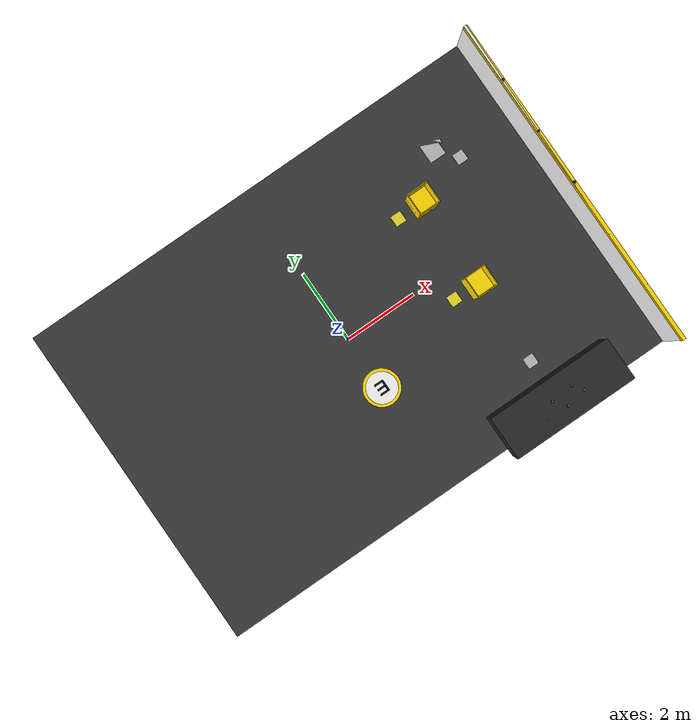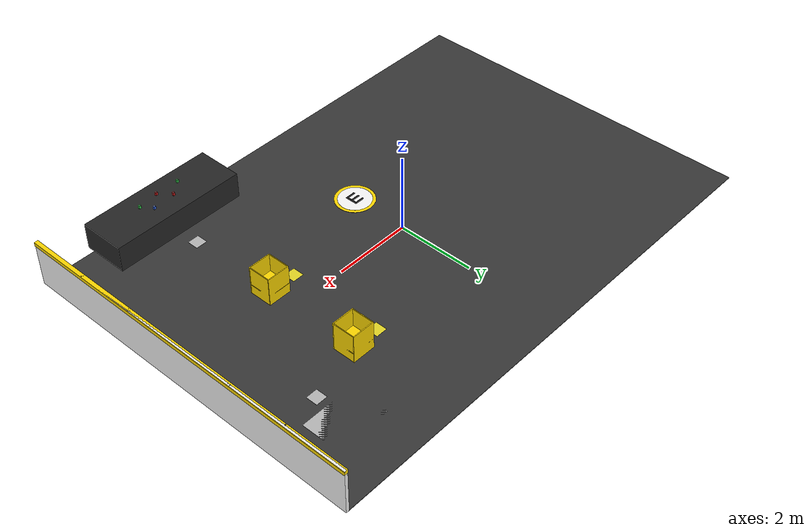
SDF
<sdf version="1.7">
 <world name="warehouse_exact">
  <model name="ground_plane">
   <static>1</static>
   <link name="link">
    <collision name="collision">
     <geometry><box><size>13.2 9.2 0.02</size></box></geometry>
     <surface><friction><ode><mu>1</mu><mu2>1</mu2></ode></friction></surface>
    </collision>
    <visual name="visual">
     <cast_shadows>0</cast_shadows>
     <geometry><box><size>13.2 9.2 0.02</size></box></geometry>
     <material>
      <ambient>0.22 0.22 0.22 1</ambient>
      <diffuse>0.22 0.22 0.22 1</diffuse>
      <specular>0 0 0 1</specular>
     </material>
    </visual>
   </link>
  </model>
  <model name="barrier_east">
   <pose>6.6 0 0.6 0 -0 0</pose>
   <static>1</static>
   <link name="link">
    <collision name="collision"><geometry><box><size>0.08 9.2 1.2</size></box></geometry></collision>
    <visual name="panel">
     <geometry><box><size>0.08 9.2 1.2</size></box></geometry>
     <material><ambient>0.95 0.95 0.95 1</ambient><diffuse>0.95 0.95 0.95 1</diffuse></material>
    </visual>
    <visual name="yellow_top">
     <pose>0 0 0.55 0 -0 0</pose>
     <geometry><box><size>0.1 9.2 0.1</size></box></geometry>
     <material><ambient>1 0.85 0 1</ambient><diffuse>1 0.85 0 1</diffuse></material>
    </visual>
   </link>
   <link name="support_1">
    <pose>0 -3 0 0 -0 0</pose>
    <visual name="visual">
     <geometry><cylinder><radius>0.04</radius><length>1.2</length></cylinder></geometry>
     <material><ambient>0.1 0.1 0.1 1</ambient><diffuse>0.1 0.1 0.1 1</diffuse></material>
    </visual>
   </link>
   <link name="support_2">
    <pose>0 -1.5 0 0 -0 0</pose>
    <visual name="visual">
     <geometry><cylinder><radius>0.04</radius><length>1.2</length></cylinder></geometry>
     <material><ambient>0.1 0.1 0.1 1</ambient><diffuse>0.1 0.1 0.1 1</diffuse></material>
    </visual>
   </link>
   <link name="support_3">
    <visual name="visual">
     <geometry><cylinder><radius>0.04</radius><length>1.2</length></cylinder></geometry>
     <material><ambient>0.1 0.1 0.1 1</ambient><diffuse>0.1 0.1 0.1 1</diffuse></material>
    </visual>
   </link>
   <link name="support_4">
    <pose>0 1.5 0 0 -0 0</pose>
    <visual name="visual">
     <geometry><cylinder><radius>0.04</radius><length>1.2</length></cylinder></geometry>
     <material><ambient>0.1 0.1 0.1 1</ambient><diffuse>0.1 0.1 0.1 1</diffuse></material>
    </visual>
   </link>
   <link name="support_5">
    <pose>0 3 0 0 -0 0</pose>
    <visual name="visual">
     <geometry><cylinder><radius>0.04</radius><length>1.2</length></cylinder></geometry>
     <material><ambient>0.1 0.1 0.1 1</ambient><diffuse>0.1 0.1 0.1 1</diffuse></material>
    </visual>
   </link>
  </model>
  <model name="position_circle_3">
   <pose>0 -1.5 0.022 0 -0 0</pose>
   <static>1</static>
   <link name="link">
    <visual name="yellow_outer">
     <geometry><cylinder><radius>0.5</radius><length>0.004</length></cylinder></geometry>
     <material><ambient>1 0.85 0 1</ambient><diffuse>1 0.85 0 1</diffuse></material>
    </visual>
    <visual name="white_center">
     <pose>0 0 0.001 0 -0 0</pose>
     <geometry><cylinder><radius>0.42</radius><length>0.004</length></cylinder></geometry>
     <material><ambient>0.98 0.98 0.98 1</ambient><diffuse>0.98 0.98 0.98 1</diffuse></material>
    </visual>
    <visual name="seg_A">
     <pose>0 0.14 0.02 0 -0 0</pose>
     <geometry><box><size>0.26 0.05 0.004</size></box></geometry>
     <material><ambient>0.1 0.1 0.1 1</ambient><diffuse>0.1 0.1 0.1 1</diffuse></material>
    </visual>
    <visual name="seg_B">
     <pose>0.11 0.05 0.02 0 -0 0</pose>
     <geometry><box><size>0.05 0.18 0.004</size></box></geometry>
     <material><ambient>0.1 0.1 0.1 1</ambient><diffuse>0.1 0.1 0.1 1</diffuse></material>
    </visual>
    <visual name="seg_G">
     <pose>0 0 0.02 0 -0 0</pose>
     <geometry><box><size>0.26 0.05 0.004</size></box></geometry>
     <material><ambient>0.1 0.1 0.1 1</ambient><diffuse>0.1 0.1 0.1 1</diffuse></material>
    </visual>
    <visual name="seg_C">
     <pose>0.11 -0.07 0.02 0 -0 0</pose>
     <geometry><box><size>0.05 0.18 0.004</size></box></geometry>
     <material><ambient>0.1 0.1 0.1 1</ambient><diffuse>0.1 0.1 0.1 1</diffuse></material>
    </visual>
    <visual name="seg_D">
     <pose>0 -0.14 0.02 0 -0 0</pose>
     <geometry><box><size>0.26 0.05 0.004</size></box></geometry>
     <material><ambient>0.1 0.1 0.1 1</ambient><diffuse>0.1 0.1 0.1 1</diffuse></material>
    </visual>
   </link>
  </model>
  <model name="yellow_crate_right_top">
   <pose>3.5 1.8 0.375 0 -0 0</pose>
   <static>1</static>
   <link name="bottom">
    <pose>0 0 -0.115 0 -0 0</pose>
    <collision name="collision"><geometry><box><size>0.6 0.6 0.02</size></box></geometry></collision>
    <visual name="visual">
     <geometry><box><size>0.6 0.6 0.02</size></box></geometry>
     <material><ambient>1 0.85 0 1</ambient><diffuse>1 0.85 0 1</diffuse></material>
    </visual>
   </link>
   <link name="wall_front">
    <pose>0 0.29 0 0 -0 0</pose>
    <collision name="collision"><geometry><box><size>0.6 0.02 0.75</size></box></geometry></collision>
    <visual name="visual">
     <geometry><box><size>0.6 0.02 0.75</size></box></geometry>
     <material><ambient>1 0.85 0 1</ambient><diffuse>1 0.85 0 1</diffuse></material>
    </visual>
   </link>
   <link name="wall_back">
    <pose>0 -0.29 0 0 -0 0</pose>
    <collision name="collision"><geometry><box><size>0.6 0.02 0.75</size></box></geometry></collision>
    <visual name="visual">
     <geometry><box><size>0.6 0.02 0.75</size></box></geometry>
     <material><ambient>1 0.85 0 1</ambient><diffuse>1 0.85 0 1</diffuse></material>
    </visual>
   </link>
   <link name="wall_left">
    <pose>-0.29 0 0 0 -0 0</pose>
    <collision name="collision"><geometry><box><size>0.02 0.56 0.75</size></box></geometry></collision>
    <visual name="visual">
     <geometry><box><size>0.02 0.56 0.75</size></box></geometry>
     <material><ambient>1 0.85 0 1</ambient><diffuse>1 0.85 0 1</diffuse></material>
    </visual>
   </link>
   <link name="wall_right">
    <pose>0.29 0 0 0 -0 0</pose>
    <collision name="collision"><geometry><box><size>0.02 0.56 0.75</size></box></geometry></collision>
    <visual name="visual">
     <geometry><box><size>0.02 0.56 0.75</size></box></geometry>
     <material><ambient>1 0.85 0 1</ambient><diffuse>1 0.85 0 1</diffuse></material>
    </visual>
   </link>
  </model>
  <model name="yellow_crate_right_middle">
   <pose>3.5 -0.7 0.375 0 -0 0</pose>
   <static>1</static>
   <link name="bottom">
    <pose>0 0 -0.115 0 -0 0</pose>
    <collision name="collision"><geometry><box><size>0.6 0.6 0.02</size></box></geometry></collision>
    <visual name="visual">
     <geometry><box><size>0.6 0.6 0.02</size></box></geometry>
     <material><ambient>1 0.85 0 1</ambient><diffuse>1 0.85 0 1</diffuse></material>
    </visual>
   </link>
   <link name="wall_front">
    <pose>0 0.29 0 0 -0 0</pose>
    <collision name="collision"><geometry><box><size>0.6 0.02 0.75</size></box></geometry></collision>
    <visual name="visual">
     <geometry><box><size>0.6 0.02 0.75</size></box></geometry>
     <material><ambient>1 0.85 0 1</ambient><diffuse>1 0.85 0 1</diffuse></material>
    </visual>
   </link>
   <link name="wall_back">
    <pose>0 -0.29 0 0 -0 0</pose>
    <collision name="collision"><geometry><box><size>0.6 0.02 0.75</size></box></geometry></collision>
    <visual name="visual">
     <geometry><box><size>0.6 0.02 0.75</size></box></geometry>
     <material><ambient>1 0.85 0 1</ambient><diffuse>1 0.85 0 1</diffuse></material>
    </visual>
   </link>
   <link name="wall_left">
    <pose>-0.29 0 0 0 -0 0</pose>
    <collision name="collision"><geometry><box><size>0.02 0.56 0.75</size></box></geometry></collision>
    <visual name="visual">
     <geometry><box><size>0.02 0.56 0.75</size></box></geometry>
     <material><ambient>1 0.85 0 1</ambient><diffuse>1 0.85 0 1</diffuse></material>
    </visual>
   </link>
   <link name="wall_right">
    <pose>0.29 0 0 0 -0 0</pose>
    <collision name="collision"><geometry><box><size>0.02 0.56 0.75</size></box></geometry></collision>
    <visual name="visual">
     <geometry><box><size>0.02 0.56 0.75</size></box></geometry>
     <material><ambient>1 0.85 0 1</ambient><diffuse>1 0.85 0 1</diffuse></material>
    </visual>
   </link>
  </model>
  <model name="charging_zone">
   <static>0</static>
   <pose>5.0 3.0 0.005 0 -0 0</pose>
   <link name="link">
    <collision name="collision"><geometry><box><size>1.4 1 0.01</size></box></geometry></collision>
    <visual name="charging_visual">
     <geometry><box><size>1.4 1 0.01</size></box></geometry>
     <cast_shadows>0</cast_shadows>
     <material>
      <script>
       <uri>file:///home/douaa/Lab_moveit/src/my_gazebo_world/materials/scripts/charging.material</uri>
       <uri>file:///home/douaa/Lab_moveit/src/my_gazebo_world/materials/textures/charging_zone_no_alpha.png</uri>
       <name>ChargingZone</name>
      </script>
     </material>
    </visual>
    <inertial>
     <inertia><ixx>1</ixx><ixy>0</ixy><ixz>0</ixz><iyy>1</iyy><iyz>0</iyz><izz>1</izz></inertia>
     <mass>1</mass>
    </inertial>
   </link>
  </model>
  <model name="safety_zone_right">
   <pose>5.0 3.0 0.004 0 -0 0</pose>
   <static>1</static>
   <link name="link">
    <visual name="black_stripe_1">
     <pose>-0.35 0 0 0 -0 0.785</pose>
     <geometry><box><size>1.6 0.08 0.002</size></box></geometry>
     <material><ambient>0.1 0.1 0.1 1</ambient><diffuse>0.1 0.1 0.1 1</diffuse></material>
    </visual>
    <visual name="black_stripe_2">
     <pose>-0.15 0 0 0 -0 0.785</pose>
     <geometry><box><size>1.6 0.08 0.002</size></box></geometry>
     <material><ambient>0.1 0.1 0.1 1</ambient><diffuse>0.1 0.1 0.1 1</diffuse></material>
    </visual>
    <visual name="black_stripe_3">
     <pose>0.05 0 0 0 -0 0.785</pose>
     <geometry><box><size>1.6 0.08 0.002</size></box></geometry>
     <material><ambient>0.1 0.1 0.1 1</ambient><diffuse>0.1 0.1 0.1 1</diffuse></material>
    </visual>
    <visual name="black_stripe_4">
     <pose>0.25 0 0 0 -0 0.785</pose>
     <geometry><box><size>1.6 0.08 0.002</size></box></geometry>
     <material><ambient>0.1 0.1 0.1 1</ambient><diffuse>0.1 0.1 0.1 1</diffuse></material>
    </visual>
    <visual name="black_stripe_5">
     <pose>0.45 0 0 0 -0 0.785</pose>
     <geometry><box><size>1.6 0.08 0.002</size></box></geometry>
     <material><ambient>0.1 0.1 0.1 1</ambient><diffuse>0.1 0.1 0.1 1</diffuse></material>
    </visual>
   </link>
  </model>
  <model name="black_table_right">
   <pose>3.5 -4.21 0.34 0 -0 0</pose>
   <static>1</static>
   <link name="link">
    <collision name="collision"><geometry><box><size>3.5 1.2 0.68</size></box></geometry></collision>
    <visual name="visual">
     <geometry><box><size>3.5 1.2 0.68</size></box></geometry>
     <material><ambient>0.15 0.15 0.15 1</ambient><diffuse>0.15 0.15 0.15 1</diffuse></material>
    </visual>
   </link>
  </model>
  <model name="red_box_1">
   <pose>3.5 -4.41 0.72 0 -0 0</pose>
   <static>1</static>
   <link name="link">
    <collision name="collision"><geometry><box><size>0.05 0.05 0.08</size></box></geometry></collision>
    <visual name="visual">
     <geometry><box><size>0.05 0.05 0.08</size></box></geometry>
     <material><ambient>0.8 0.1 0.1 1</ambient><diffuse>0.8 0.1 0.1 1</diffuse></material>
    </visual>
    <visual name="label">
     <pose>0 0 0.041 0 -0 0</pose>
     <geometry><box><size>0.03 0.02 0.001</size></box></geometry>
     <material><ambient>0.95 0.95 0.95 1</ambient><diffuse>0.95 0.95 0.95 1</diffuse></material>
    </visual>
   </link>
   <static>1</static>
  </model>
  <model name="yellow_box_1">
   <pose>4.05543 -4.32537 0.72 0 -0 0</pose>
   <static>1</static>
   <link name="link">
    <collision name="collision"><geometry><box><size>0.05 0.05 0.08</size></box></geometry></collision>
    <visual name="visual">
     <geometry><box><size>0.05 0.05 0.08</size></box></geometry>
     <material><ambient>0.2 0.8 0.3 1</ambient><diffuse>0.2 0.8 0.3 1</diffuse></material>
    </visual>
    <visual name="label">
     <pose>0 0 0.041 0 -0 0</pose>
     <geometry><box><size>0.03 0.02 0.001</size></box></geometry>
     <material><ambient>0.95 0.95 0.95 1</ambient><diffuse>0.95 0.95 0.95 1</diffuse></material>
    </visual>
   </link>
  </model>
  <model name="yellow_box_2">
   <pose>2.87812 -4.40148  0.72 0 -0 0</pose>
   <static>1</static>
   <link name="link">
    <collision name="collision"><geometry><box><size>0.05 0.05 0.08</size></box></geometry></collision>
    <visual name="visual">
     <geometry><box><size>0.05 0.05 0.08</size></box></geometry>
     <material><ambient>0.2 0.8 0.3 1</ambient><diffuse>0.2 0.8 0.3 1</diffuse></material>
    </visual>
    <visual name="label">
     <pose>0 0 0.041 0 -0 0</pose>
     <geometry><box><size>0.03 0.02 0.001</size></box></geometry>
     <material><ambient>0.95 0.95 0.95 1</ambient><diffuse>0.95 0.95 0.95 1</diffuse></material>
    </visual>
   </link>
  </model>
  <model name="red_box_2">
   <pose>3.24058 -4.10845 0.72 0 -0 0</pose>
   <static>1</static>
   <link name="link">
    <collision name="collision"><geometry><box><size>0.05 0.05 0.08</size></box></geometry></collision>
    <visual name="visual">
     <geometry><box><size>0.05 0.05 0.08</size></box></geometry>
     <material><ambient>0.8 0.1 0.1 1</ambient><diffuse>0.8 0.1 0.1 1</diffuse></material>
    </visual>
    <visual name="label">
     <pose>0 0 0.041 0 -0 0</pose>
     <geometry><box><size>0.03 0.02 0.001</size></box></geometry>
     <material><ambient>0.95 0.95 0.95 1</ambient><diffuse>0.95 0.95 0.95 1</diffuse></material>
    </visual>
   </link>
  </model>
  <model name="blue_box_1">
   <pose>3.84717 -4.05499  0.72 0 -0 0</pose>
   <static>1</static>
   <link name="link">
    <collision name="collision"><geometry><box><size>0.05 0.05 0.08</size></box></geometry></collision>
    <visual name="visual">
     <geometry><box><size>0.05 0.05 0.08</size></box></geometry>
     <material><ambient>0.2 0.4 0.9 1</ambient><diffuse>0.2 0.4 0.9 1</diffuse></material>
    </visual>
    <visual name="label">
     <pose>0 0 0.041 0 -0 0</pose>
     <geometry><box><size>0.03 0.02 0.001</size></box></geometry>
     <material><ambient>0.95 0.95 0.95 1</ambient><diffuse>0.95 0.95 0.95 1</diffuse></material>
    </visual>
   </link>
  </model>
  <model name="aruco_marker_charging">
   <pose>5.0 2.2 0.025 0 0 0</pose>
   <static>1</static>
   <link name="link">
    <visual name="visual">
     <geometry><box><size>0.30 0.30 0.001</size></box></geometry>
     <material>
      <script>
       <uri>file:///home/douaa/Lab_moveit/src/my_gazebo_world/materials/scripts/aruco_markers.material</uri>
       <uri>file:///home/douaa/Lab_moveit/src/my_gazebo_world/materials/textures</uri>
       <name>ArucoMarkerCharging</name>
      </script>
     </material>
    </visual>
   </link>
  </model>
  <model name="aruco_marker_big_table">
   <pose>3.5 -3.1 0.025 0 0 0</pose>
   <static>1</static>
   <link name="link">
    <visual name="visual">
     <geometry><box><size>0.30 0.30 0.001</size></box></geometry>
     <material>
      <script>
       <uri>file:///home/douaa/Lab_moveit/src/my_gazebo_world/materials/scripts/aruco_markers.material</uri>
       <uri>file:///home/douaa/Lab_moveit/src/my_gazebo_world/materials/textures</uri>
       <name>ArucoMarkerBigTable</name>
      </script>
     </material>
    </visual>
   </link>
  </model>
  <model name="aruco_marker_yellow_right_top">
   <pose>2.8 1.8 0.025 0 0 0</pose>
   <static>1</static>
   <link name="link">
    <visual name="visual">
     <geometry><box><size>0.30 0.30 0.001</size></box></geometry>
     <material>
      <script>
       <uri>file:///home/douaa/Lab_moveit/src/my_gazebo_world/materials/scripts/aruco_markers.material</uri>
       <uri>file:///home/douaa/Lab_moveit/src/my_gazebo_world/materials/textures</uri>
       <name>ArucoMarkerYellowRightTop</name>
      </script>
     </material>
    </visual>
   </link>
  </model>
  <model name="aruco_marker_yellow_right_middle">
   <pose>2.8 -0.7 0.025 0 0 0</pose>
   <static>1</static>
   <link name="link">
    <visual name="visual">
     <geometry><box><size>0.30 0.30 0.001</size></box></geometry>
     <material>
      <script>
       <uri>file:///home/douaa/Lab_moveit/src/my_gazebo_world/materials/scripts/aruco_markers.material</uri>
       <uri>file:///home/douaa/Lab_moveit/src/my_gazebo_world/materials/textures</uri>
       <name>ArucoMarkerYellowRightMiddle</name>
      </script>
     </material>
    </visual>
   </link>
  </model>
 </world>
</sdf>
